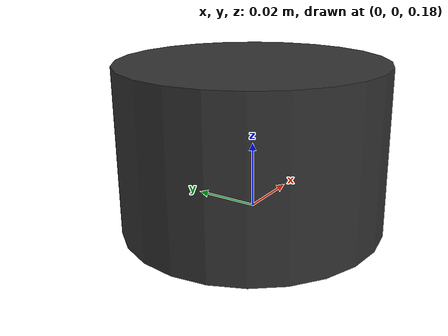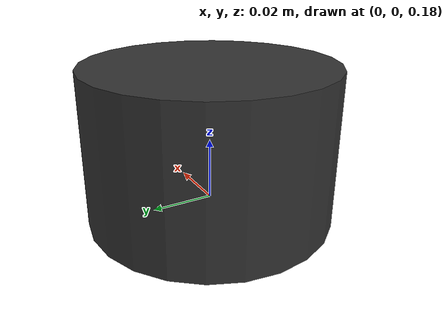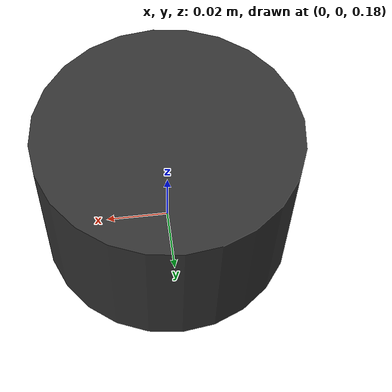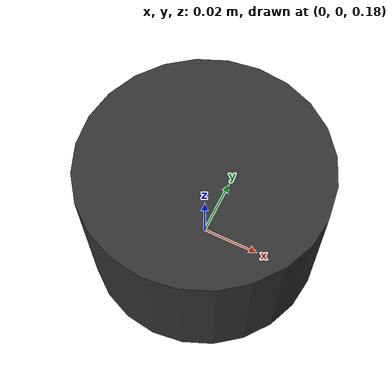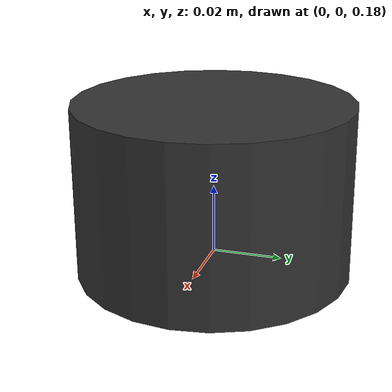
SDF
<?xml version="1.0"?>
<sdf version="1.8">
  <model name="lidar_sensor">
    <pose>0 0 0.2 0 0 0</pose>
    <static>false</static>

    <link name="lidar_link">
      <pose>0 0 0 0 0 0</pose>

      <inertial>
        <mass>0.1</mass>
        <inertia>
          <ixx>0.0001</ixx>
          <iyy>0.0001</iyy>
          <izz>0.0001</izz>
        </inertia>
      </inertial>

      <collision name="collision">
        <geometry>
          <cylinder>
            <radius>0.04</radius>
            <length>0.05</length>
          </cylinder>
        </geometry>
      </collision>

      <visual name="visual">
        <geometry>
          <cylinder>
            <radius>0.04</radius>
            <length>0.05</length>
          </cylinder>
        </geometry>
        <material>
          <ambient>0.2 0.2 0.2 1</ambient>
          <diffuse>0.2 0.2 0.2 1</diffuse>
        </material>
      </visual>

      <sensor name="lidar" type="gpu_lidar">
        <topic>scan</topic>
        <update_rate>10</update_rate>
        <lidar>
          <scan>
            <horizontal>
              <samples>360</samples>
              <resolution>1</resolution>
              <min_angle>-3.14159</min_angle>
              <max_angle>3.14159</max_angle>
            </horizontal>
          </scan>
          <range>
            <min>0.15</min>
            <max>10.0</max>
            <resolution>0.01</resolution>
          </range>
          <!-- ⭐ REDUCED NOISE -->
          <noise>
            <type>gaussian</type>
            <mean>0.0</mean>
            <stddev>0.001</stddev>  <!-- Reduced from 0.01 to 0.001 (1mm) -->
          </noise>
        </lidar>
        <always_on>1</always_on>
        <visualize>true</visualize>
      </sensor>
    </link>
  </model>
</sdf>
